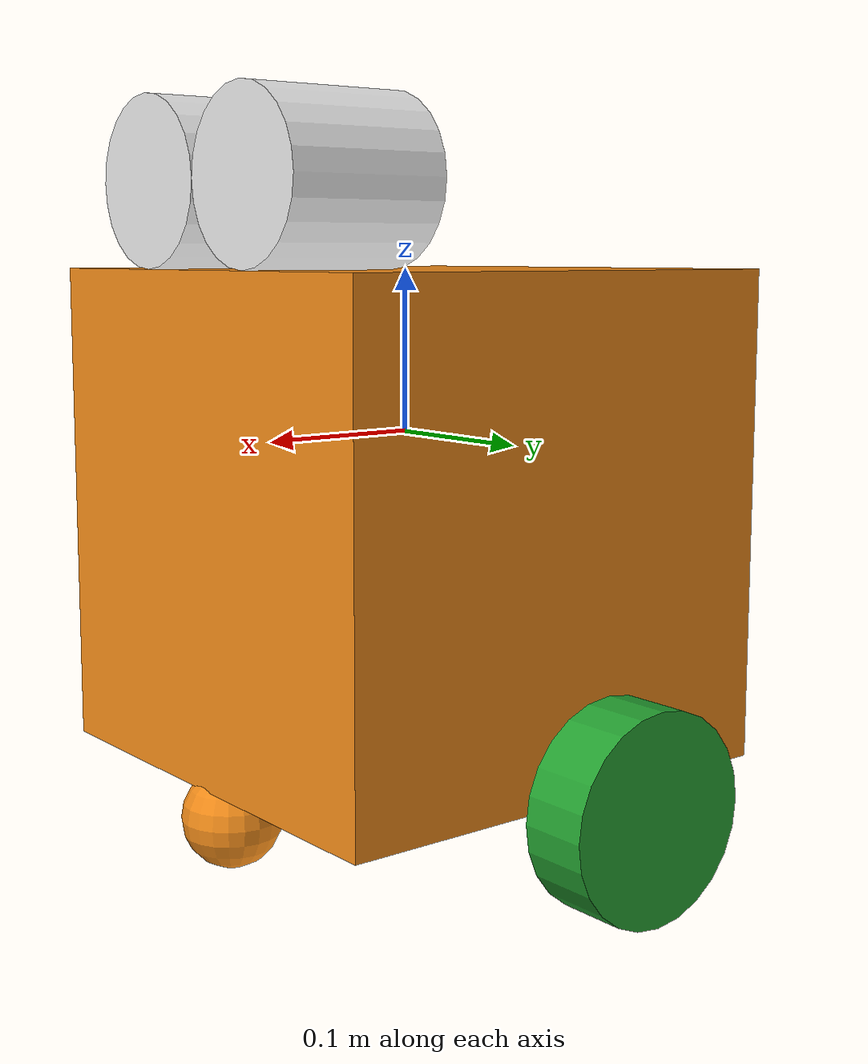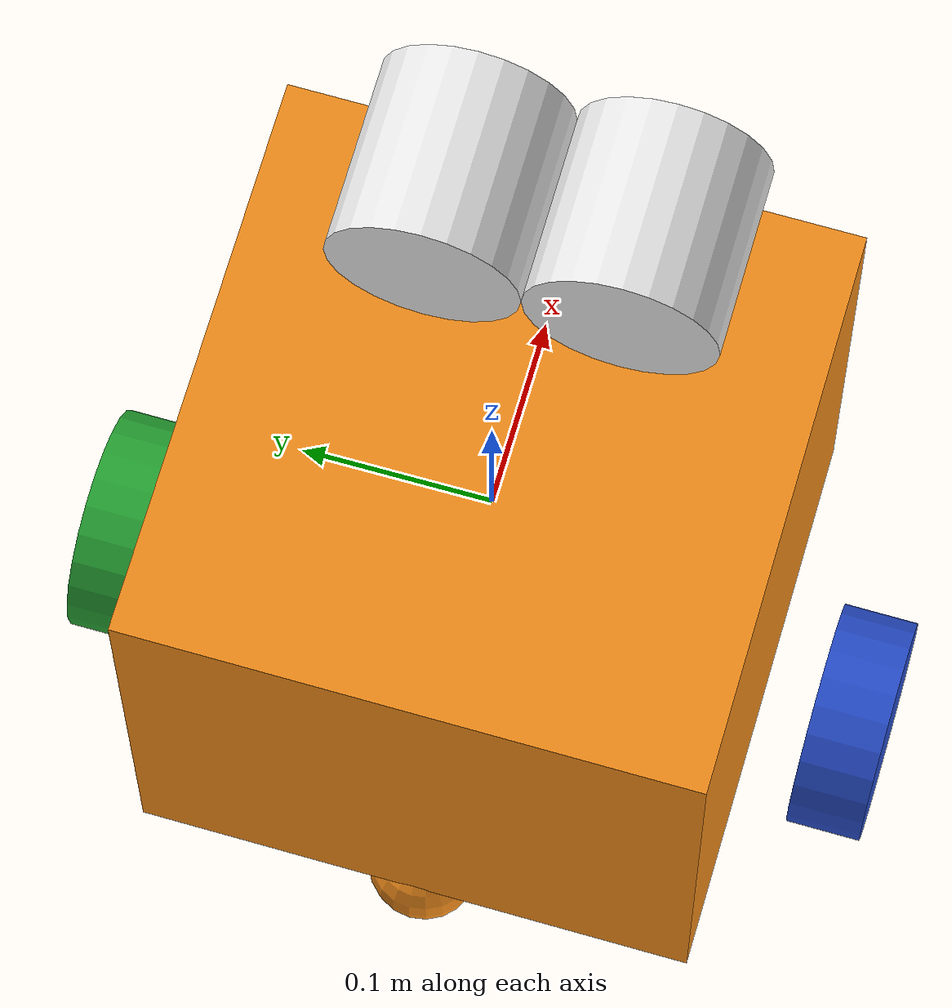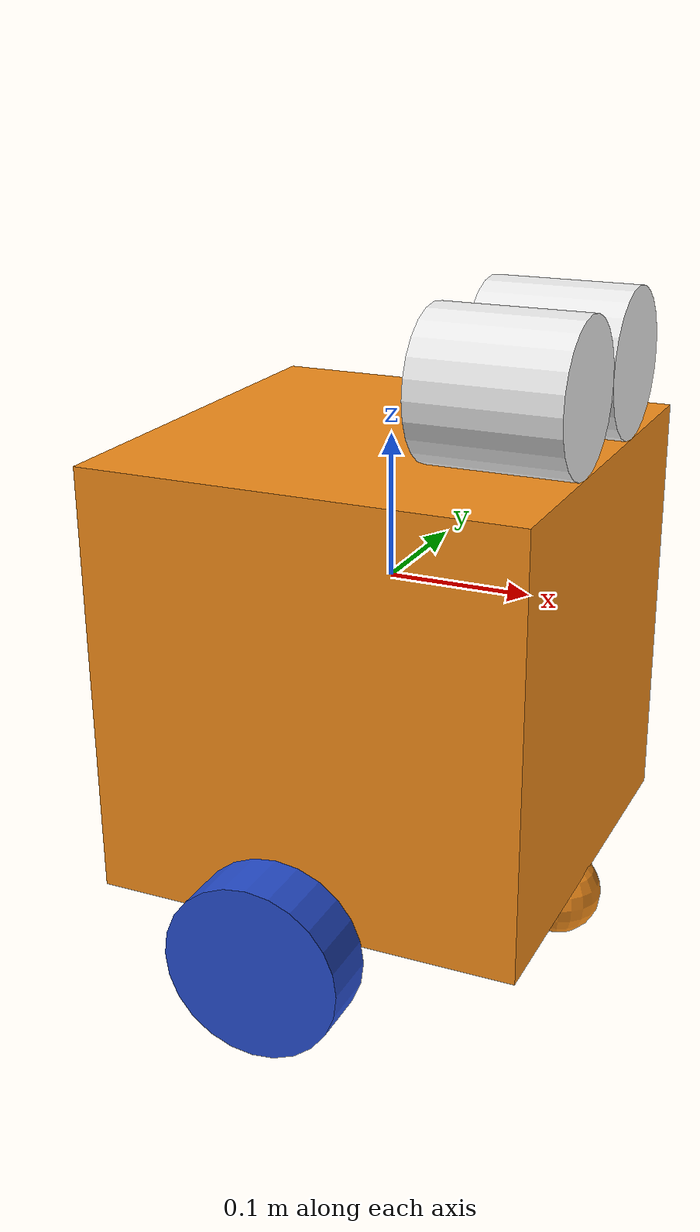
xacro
<?xml version="1.0" ?>
<robot name="minik_gazebo" xmlns:xacro="http://www.ros.org/wiki/xacro">

  <xacro:include filename="$(find minik_gazebo)/urdf/materials.xacro" />
  <xacro:include filename="$(find minik_gazebo)/urdf/minik.gazebo" />
  <xacro:include filename="$(find minik_gazebo)/urdf/macros.xacro" />

  <link name="link_chassis">
    <!-- pose and inertial -->
    <pose>0 0 0.1 0 0 0</pose>
    <inertial>
      <mass value="2"/>
      <origin rpy="0 0 0" xyz="0 0 0"/>
      <inertia ixx="0.0395416666667" ixy="0" ixz="0" iyy="0.106208333333" iyz="0" izz="0.106208333333"/>
    </inertial>
    <!-- body -->
    <collision name="collision_chassis">
      <origin rpy="0 0 0" xyz="0 0 -0.05"/>
      <geometry>
        <box size="0.3 0.3 0.3"/>
      </geometry>
    </collision>
    <visual name="visual_chassis">
      <origin rpy="0 0 0" xyz="0 0 -0.05"/>
      <geometry>
        <mesh filename = "package://minik_gazebo/meshes/minik2.dae" scale="0.5 0.5 0.5"/>
      </geometry>

    </visual>
    <!-- caster front -->
    <collision name="caster_front_collision">
      <origin rpy=" 0 0 0" xyz="0.13 0 -0.22"/>
      <geometry>
        <sphere radius="0.03"/>
      </geometry>
      <surface>
        <friction>
          <ode>
            <mu>0</mu>
            <mu2>0</mu2>
            <slip1>1.0</slip1>
            <slip2>1.0</slip2>
          </ode>
        </friction>
      </surface>
    </collision>
    <visual name="caster_front_visual">
      <origin rpy=" 0 0 0" xyz="0.13 0 -0.22"/>
      <geometry>
        <sphere radius="0.03"/>
      </geometry>
    </visual>

   <!-- caster back -->
    <collision name="caster_back_collision">
      <origin rpy=" 0 0 0" xyz="-0.13 0 -0.22"/>
      <geometry>
        <sphere radius="0.03"/>
      </geometry>
      <surface>
        <friction>
          <ode>
            <mu>0</mu>
            <mu2>0</mu2>
            <slip1>1.0</slip1>
            <slip2>1.0</slip2>
          </ode>
        </friction>
      </surface>
    </collision>
    <visual name="caster_back_visual">
      <origin rpy=" 0 0 0" xyz="-0.13 0 -0.22"/>
      <geometry>
        <sphere radius="0.03"/>
      </geometry>
    </visual>
  </link>
<!-- sensor-->
  <link name="sensor_laser">
   <inertial>
       <origin xyz="0 0 0" rpy="0 0 0" />
       <mass value="1" />
       <xacro:cylinder_inertia mass="1" r="0.05" l="0.1" />
   </inertial>

   <visual name="left_cam_visual">
       <origin xyz="0 -0.05 0" rpy="0 1.57 0" />
       <geometry>
       <cylinder radius="0.05" length="0.1"/>
       </geometry>
       <material name="white" />
   </visual>

   <collision name="left_cam_collision">
       <origin xyz="0 -0.05 0" rpy="0 1.57 0"/>
       <geometry>
       <cylinder radius="0.05" length="0.1"/>
       </geometry>
   </collision>

   <visual name="right_cam_visual">
       <origin xyz="0 0.05 0" rpy="0 1.57 0" />
       <geometry>
       <cylinder radius="0.05" length="0.1"/>
       </geometry>
       <material name="white" />
   </visual>

   <collision name="right_cam_collision">
       <origin xyz="0 0.05 0" rpy="0 1.57 0"/>
       <geometry>
       <cylinder radius="0.05" length="0.1"/>
       </geometry>
   </collision>

   </link>

   <joint name="joint_sensor_laser" type="fixed">
   <origin xyz="0.1 0 0.15" rpy="0 0 0"/>
   <parent link="link_chassis"/>
   <child link="sensor_laser"/>
 </joint>

  <xacro:link_wheel name="link_right_wheel" />
  <xacro:joint_wheel name="joint_right_wheel" child="link_right_wheel" origin_xyz="0 -0.2 -0.19" />

  <xacro:link_wheel name="link_left_wheel" />
  <xacro:joint_wheel name="joint_left_wheel" child="link_left_wheel" origin_xyz="0 0.2 -0.19" />
</robot>

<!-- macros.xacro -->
<robot>
    <macro name="link_wheel" params="name">
        <link name="${name}">
            <inertial>
              <mass value="0.2"/>
              <origin rpy="0 1.5707 1.5707" xyz="0 0 0"/>
              <inertia ixx="0.000526666666667" ixy="0" ixz="0" iyy="0.000526666666667" iyz="0" izz="0.001"/>
            </inertial>
            <collision name="{name}_collision">
              <origin rpy="0 1.5707 1.5707" xyz="0 0 0"/>
              <geometry>
                <cylinder length="0.04" radius="0.06"/><!-- radius="0.07-->
              </geometry>
            </collision>
            <visual name="${name}_visual">
              <origin rpy="0 1.5707 1.5707" xyz="0 0 0"/>
              <geometry>
                <cylinder length="0.04" radius="0.06"/><!-- radius="0.07-->
              </geometry>
            </visual>
        </link>
    </macro>

    <macro name="joint_wheel" params="name child origin_xyz">
      <joint name="${name}" type="continuous">
        <origin rpy="0 0 0" xyz="${origin_xyz}"/>
        <child link="${child}"/>
        <parent link="link_chassis"/>
        <axis rpy="0 0 0" xyz="0 1 0"/>
        <limit effort="10000" velocity="1000"/>
        <joint_properties damping="1.0" friction="1.0"/>
      </joint>
    </macro>

    <macro name="cylinder_inertia" params="mass r l">
  <inertia  ixx="${mass*(3*r*r+l*l)/12}" ixy = "0" ixz = "0"
            iyy="${mass*(3*r*r+l*l)/12}" iyz = "0"
            izz="${mass*(r*r)/2}" />
</macro>

</robot>
